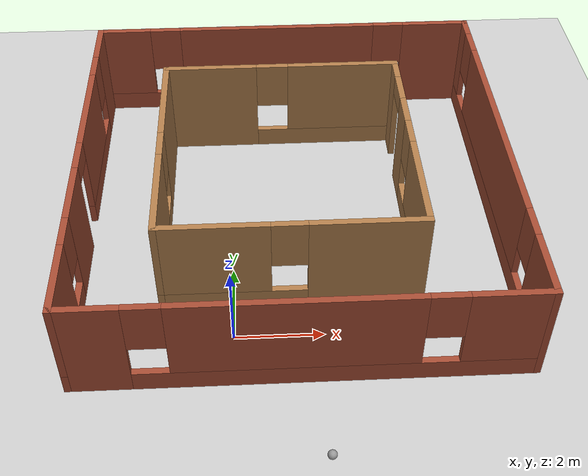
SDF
<sdf version="1.6">
 <world name="default">
  <model name="ground_plane">
   <static>1</static>
   <link name="link">
    <collision name="collision">
     <geometry><plane><normal>0 0 1</normal><size>100 100</size></plane></geometry>
     <surface>
      <contact><collide_bitmask>65535</collide_bitmask></contact>
      <friction><ode><mu>100</mu><mu2>50</mu2></ode></friction>
     </surface>
    </collision>
    <visual name="visual">
     <cast_shadows>0</cast_shadows>
     <geometry><plane><normal>0 0 1</normal><size>100 100</size></plane></geometry>
     <material>
      <script><uri>file://media/materials/scripts/gazebo.material</uri><name>Gazebo/Grey</name></script>
     </material>
    </visual>
   </link>
  </model>
  <model name="robot">
   <link name="link_0">
    <inertial>
     <mass>1</mass>
     <inertia>
      <ixx>0.166667</ixx>
      <ixy>0</ixy>
      <ixz>0</ixz>
      <iyy>0.166667</iyy>
      <iyz>0</iyz>
      <izz>0.166667</izz>
     </inertia>
    </inertial>
    <visual name="visual">
     <geometry><box><size>1 1 0.1</size></box></geometry>
     <material>
      <lighting>1</lighting>
      <script><uri>file://media/materials/scripts/gazebo.material</uri><name>Gazebo/Grey</name></script>
      <shader type="pixel"><normal_map>__default__</normal_map></shader>
      <ambient>0.3 0.3 0.3 1</ambient>
      <diffuse>0.7 0.7 0.7 1</diffuse>
      <specular>0.01 0.01 0.01 1</specular>
      <emissive>0 0 0 1</emissive>
     </material>
    </visual>
    <collision name="collision">
     <geometry><box><size>1 1 0.1</size></box></geometry>
     <surface>
      <friction>
       <ode><mu>1</mu><mu2>1</mu2><fdir1>0 0 0</fdir1><slip1>0</slip1><slip2>0</slip2></ode>
       <torsional>
        <coefficient>1</coefficient>
        <patch_radius>0</patch_radius>
        <surface_radius>0</surface_radius>
        <use_patch_radius>1</use_patch_radius>
        <ode><slip>0</slip></ode>
       </torsional>
      </friction>
      <bounce><restitution_coefficient>0</restitution_coefficient><threshold>1e+06</threshold></bounce>
      <contact>
       <collide_without_contact>0</collide_without_contact>
       <collide_without_contact_bitmask>1</collide_without_contact_bitmask>
       <collide_bitmask>1</collide_bitmask>
       <ode>
        <soft_cfm>0</soft_cfm>
        <soft_erp>0.2</soft_erp>
        <kp>1e+13</kp>
        <kd>1</kd>
        <max_vel>0.01</max_vel>
        <min_depth>0</min_depth>
       </ode>
       <bullet>
        <split_impulse>1</split_impulse>
        <split_impulse_penetration_threshold>-0.01</split_impulse_penetration_threshold>
        <soft_cfm>0</soft_cfm>
        <soft_erp>0.2</soft_erp>
        <kp>1e+13</kp>
        <kd>1</kd>
       </bullet>
      </contact>
     </surface>
    </collision>
   </link>
   <link name="link_1">
    <pose>0.3 -0.550019 0 1.5707 -0 0</pose>
    <inertial>
     <mass>1</mass>
     <inertia><ixx>0.145833</ixx><ixy>0</ixy><ixz>0</ixz><iyy>0.145833</iyy><iyz>0</iyz><izz>0.125</izz></inertia>
    </inertial>
    <visual name="visual">
     <geometry><cylinder><radius>0.2</radius><length>0.1</length></cylinder></geometry>
     <material>
      <lighting>1</lighting>
      <script><uri>file://media/materials/scripts/gazebo.material</uri><name>Gazebo/Grey</name></script>
      <shader type="pixel"><normal_map>__default__</normal_map></shader>
      <ambient>0.3 0.3 0.3 1</ambient>
      <diffuse>0.7 0.7 0.7 1</diffuse>
      <specular>0.01 0.01 0.01 1</specular>
      <emissive>0 0 0 1</emissive>
     </material>
    </visual>
    <collision name="collision">
     <geometry><cylinder><radius>0.2</radius><length>0.1</length></cylinder></geometry>
     <surface>
      <friction>
       <ode><mu>1</mu><mu2>1</mu2><fdir1>0 0 0</fdir1><slip1>0</slip1><slip2>0</slip2></ode>
       <torsional>
        <coefficient>1</coefficient>
        <patch_radius>0</patch_radius>
        <surface_radius>0</surface_radius>
        <use_patch_radius>1</use_patch_radius>
        <ode><slip>0</slip></ode>
       </torsional>
      </friction>
      <bounce><restitution_coefficient>0</restitution_coefficient><threshold>1e+06</threshold></bounce>
      <contact>
       <collide_without_contact>0</collide_without_contact>
       <collide_without_contact_bitmask>1</collide_without_contact_bitmask>
       <collide_bitmask>1</collide_bitmask>
       <ode>
        <soft_cfm>0</soft_cfm>
        <soft_erp>0.2</soft_erp>
        <kp>1e+13</kp>
        <kd>1</kd>
        <max_vel>0.01</max_vel>
        <min_depth>0</min_depth>
       </ode>
       <bullet>
        <split_impulse>1</split_impulse>
        <split_impulse_penetration_threshold>-0.01</split_impulse_penetration_threshold>
        <soft_cfm>0</soft_cfm>
        <soft_erp>0.2</soft_erp>
        <kp>1e+13</kp>
        <kd>1</kd>
       </bullet>
      </contact>
     </surface>
    </collision>
   </link>
   <link name="link_1_clone">
    <pose>0.3 0.550019 0 1.5707 -0 0</pose>
    <inertial>
     <mass>1</mass>
     <inertia><ixx>0.145833</ixx><ixy>0</ixy><ixz>0</ixz><iyy>0.145833</iyy><iyz>0</iyz><izz>0.125</izz></inertia>
    </inertial>
    <visual name="visual">
     <geometry><cylinder><radius>0.2</radius><length>0.1</length></cylinder></geometry>
     <material>
      <lighting>1</lighting>
      <script><uri>file://media/materials/scripts/gazebo.material</uri><name>Gazebo/Grey</name></script>
      <shader type="pixel"><normal_map>__default__</normal_map></shader>
      <ambient>0.3 0.3 0.3 1</ambient>
      <diffuse>0.7 0.7 0.7 1</diffuse>
      <specular>0.01 0.01 0.01 1</specular>
      <emissive>0 0 0 1</emissive>
     </material>
    </visual>
    <collision name="collision">
     <geometry><cylinder><radius>0.2</radius><length>0.1</length></cylinder></geometry>
     <surface>
      <friction>
       <ode><mu>1</mu><mu2>1</mu2><fdir1>0 0 0</fdir1><slip1>0</slip1><slip2>0</slip2></ode>
       <torsional>
        <coefficient>1</coefficient>
        <patch_radius>0</patch_radius>
        <surface_radius>0</surface_radius>
        <use_patch_radius>1</use_patch_radius>
        <ode><slip>0</slip></ode>
       </torsional>
      </friction>
      <bounce><restitution_coefficient>0</restitution_coefficient><threshold>1e+06</threshold></bounce>
      <contact>
       <collide_without_contact>0</collide_without_contact>
       <collide_without_contact_bitmask>1</collide_without_contact_bitmask>
       <collide_bitmask>1</collide_bitmask>
       <ode>
        <soft_cfm>0</soft_cfm>
        <soft_erp>0.2</soft_erp>
        <kp>1e+13</kp>
        <kd>1</kd>
        <max_vel>0.01</max_vel>
        <min_depth>0</min_depth>
       </ode>
       <bullet>
        <split_impulse>1</split_impulse>
        <split_impulse_penetration_threshold>-0.01</split_impulse_penetration_threshold>
        <soft_cfm>0</soft_cfm>
        <soft_erp>0.2</soft_erp>
        <kp>1e+13</kp>
        <kd>1</kd>
       </bullet>
      </contact>
     </surface>
    </collision>
   </link>
   <link name="link_1_clone_0">
    <pose>-0.3 0.550019 0 1.5707 -0 0</pose>
    <inertial>
     <mass>1</mass>
     <inertia><ixx>0.145833</ixx><ixy>0</ixy><ixz>0</ixz><iyy>0.145833</iyy><iyz>0</iyz><izz>0.125</izz></inertia>
    </inertial>
    <visual name="visual">
     <geometry><cylinder><radius>0.2</radius><length>0.1</length></cylinder></geometry>
     <material>
      <lighting>1</lighting>
      <script><uri>file://media/materials/scripts/gazebo.material</uri><name>Gazebo/Grey</name></script>
      <shader type="pixel"><normal_map>__default__</normal_map></shader>
      <ambient>0.3 0.3 0.3 1</ambient>
      <diffuse>0.7 0.7 0.7 1</diffuse>
      <specular>0.01 0.01 0.01 1</specular>
      <emissive>0 0 0 1</emissive>
     </material>
    </visual>
    <collision name="collision">
     <geometry><cylinder><radius>0.2</radius><length>0.1</length></cylinder></geometry>
     <surface>
      <friction>
       <ode><mu>1</mu><mu2>1</mu2><fdir1>0 0 0</fdir1><slip1>0</slip1><slip2>0</slip2></ode>
       <torsional>
        <coefficient>1</coefficient>
        <patch_radius>0</patch_radius>
        <surface_radius>0</surface_radius>
        <use_patch_radius>1</use_patch_radius>
        <ode><slip>0</slip></ode>
       </torsional>
      </friction>
      <bounce><restitution_coefficient>0</restitution_coefficient><threshold>1e+06</threshold></bounce>
      <contact>
       <collide_without_contact>0</collide_without_contact>
       <collide_without_contact_bitmask>1</collide_without_contact_bitmask>
       <collide_bitmask>1</collide_bitmask>
       <ode>
        <soft_cfm>0</soft_cfm>
        <soft_erp>0.2</soft_erp>
        <kp>1e+13</kp>
        <kd>1</kd>
        <max_vel>0.01</max_vel>
        <min_depth>0</min_depth>
       </ode>
       <bullet>
        <split_impulse>1</split_impulse>
        <split_impulse_penetration_threshold>-0.01</split_impulse_penetration_threshold>
        <soft_cfm>0</soft_cfm>
        <soft_erp>0.2</soft_erp>
        <kp>1e+13</kp>
        <kd>1</kd>
       </bullet>
      </contact>
     </surface>
    </collision>
   </link>
   <link name="link_1_clone_1">
    <pose>-0.3 -0.550019 0 1.5707 -0 0</pose>
    <inertial>
     <mass>1</mass>
     <inertia><ixx>0.145833</ixx><ixy>0</ixy><ixz>0</ixz><iyy>0.145833</iyy><iyz>0</iyz><izz>0.125</izz></inertia>
    </inertial>
    <visual name="visual">
     <geometry><cylinder><radius>0.2</radius><length>0.1</length></cylinder></geometry>
     <material>
      <lighting>1</lighting>
      <script><uri>file://media/materials/scripts/gazebo.material</uri><name>Gazebo/Grey</name></script>
      <shader type="pixel"><normal_map>__default__</normal_map></shader>
      <ambient>0.3 0.3 0.3 1</ambient>
      <diffuse>0.7 0.7 0.7 1</diffuse>
      <specular>0.01 0.01 0.01 1</specular>
      <emissive>0 0 0 1</emissive>
     </material>
    </visual>
    <collision name="collision">
     <geometry><cylinder><radius>0.2</radius><length>0.1</length></cylinder></geometry>
     <surface>
      <friction>
       <ode><mu>1</mu><mu2>1</mu2><fdir1>0 0 0</fdir1><slip1>0</slip1><slip2>0</slip2></ode>
       <torsional>
        <coefficient>1</coefficient>
        <patch_radius>0</patch_radius>
        <surface_radius>0</surface_radius>
        <use_patch_radius>1</use_patch_radius>
        <ode><slip>0</slip></ode>
       </torsional>
      </friction>
      <bounce><restitution_coefficient>0</restitution_coefficient><threshold>1e+06</threshold></bounce>
      <contact>
       <collide_without_contact>0</collide_without_contact>
       <collide_without_contact_bitmask>1</collide_without_contact_bitmask>
       <collide_bitmask>1</collide_bitmask>
       <ode>
        <soft_cfm>0</soft_cfm>
        <soft_erp>0.2</soft_erp>
        <kp>1e+13</kp>
        <kd>1</kd>
        <max_vel>0.01</max_vel>
        <min_depth>0</min_depth>
       </ode>
       <bullet>
        <split_impulse>1</split_impulse>
        <split_impulse_penetration_threshold>-0.01</split_impulse_penetration_threshold>
        <soft_cfm>0</soft_cfm>
        <soft_erp>0.2</soft_erp>
        <kp>1e+13</kp>
        <kd>1</kd>
       </bullet>
      </contact>
     </surface>
    </collision>
   </link>
   <joint name="link_0_JOINT_0" type="revolute">
    <parent>link_0</parent>
    <child>link_1_clone</child>
    <axis>
     <xyz>0 0 1</xyz>
     <use_parent_model_frame>0</use_parent_model_frame>
     <limit>
      <lower>-1.79769e+308</lower>
      <upper>1.79769e+308</upper>
      <effort>-1</effort>
      <velocity>-1</velocity>
     </limit>
     <dynamics>
      <spring_reference>0</spring_reference>
      <spring_stiffness>0</spring_stiffness>
      <damping>0</damping>
     </dynamics>
    </axis>
    <physics>
     <ode><limit><cfm>0</cfm><erp>0.2</erp></limit><suspension><cfm>0</cfm><erp>0.2</erp></suspension></ode>
    </physics>
   </joint>
   <joint name="link_0_JOINT_1" type="revolute">
    <parent>link_0</parent>
    <child>link_1_clone_0</child>
    <axis>
     <xyz>0 0 1</xyz>
     <use_parent_model_frame>0</use_parent_model_frame>
     <limit>
      <lower>-1.79769e+308</lower>
      <upper>1.79769e+308</upper>
      <effort>-1</effort>
      <velocity>-1</velocity>
     </limit>
     <dynamics>
      <spring_reference>0</spring_reference>
      <spring_stiffness>0</spring_stiffness>
      <damping>0</damping>
     </dynamics>
    </axis>
    <physics>
     <ode><limit><cfm>0</cfm><erp>0.2</erp></limit><suspension><cfm>0</cfm><erp>0.2</erp></suspension></ode>
    </physics>
   </joint>
   <joint name="link_0_JOINT_2" type="revolute">
    <parent>link_0</parent>
    <child>link_1_clone_1</child>
    <axis>
     <xyz>0 0 1</xyz>
     <use_parent_model_frame>0</use_parent_model_frame>
     <limit>
      <lower>-1.79769e+308</lower>
      <upper>1.79769e+308</upper>
      <effort>-1</effort>
      <velocity>-1</velocity>
     </limit>
     <dynamics>
      <spring_reference>0</spring_reference>
      <spring_stiffness>0</spring_stiffness>
      <damping>0</damping>
     </dynamics>
    </axis>
    <physics>
     <ode><limit><cfm>0</cfm><erp>0.2</erp></limit><suspension><cfm>0</cfm><erp>0.2</erp></suspension></ode>
    </physics>
   </joint>
   <joint name="link_0_JOINT_3" type="revolute">
    <parent>link_0</parent>
    <child>link_1</child>
    <axis>
     <xyz>0 0 1</xyz>
     <use_parent_model_frame>0</use_parent_model_frame>
     <limit>
      <lower>-1.79769e+308</lower>
      <upper>1.79769e+308</upper>
      <effort>-1</effort>
      <velocity>-1</velocity>
     </limit>
     <dynamics>
      <spring_reference>0</spring_reference>
      <spring_stiffness>0</spring_stiffness>
      <damping>0</damping>
     </dynamics>
    </axis>
    <physics>
     <ode><limit><cfm>0</cfm><erp>0.2</erp></limit><suspension><cfm>0</cfm><erp>0.2</erp></suspension></ode>
    </physics>
   </joint>
   <static>0</static>
   <pose>-0.105313 1.94645 0.200005 0 0 -0.022283</pose>
  </model>
  <model name="mybuilding_0">
   <pose>1.475 3.735 0 0 -0 0</pose>
   <link name="Wall_0">
    <pose>0 -4.925 0 0 -0 0</pose>
    <visual name="Wall_0_Visual_0">
     <pose>-4.28337 0 1.25 0 -0 0</pose>
     <geometry><box><size>1.43326 0.15 2.5</size></box></geometry>
     <material>
      <script><uri>file://media/materials/scripts/gazebo.material</uri><name>Gazebo/Bricks</name></script>
      <ambient>1 1 1 1</ambient>
     </material>
     <meta><layer>0</layer></meta>
    </visual>
    <collision name="Wall_0_Collision_0">
     <geometry><box><size>1.43326 0.15 2.5</size></box></geometry>
     <pose>-4.28337 0 1.25 0 -0 0</pose>
    </collision>
    <visual name="Wall_0_Visual_1">
     <pose>0.716628 0 0.25 0 -0 0</pose>
     <geometry><box><size>8.56674 0.15 0.5</size></box></geometry>
     <material>
      <script><uri>file://media/materials/scripts/gazebo.material</uri><name>Gazebo/Bricks</name></script>
      <ambient>1 1 1 1</ambient>
     </material>
     <meta><layer>0</layer></meta>
    </visual>
    <collision name="Wall_0_Collision_1">
     <geometry><box><size>8.56674 0.15 0.5</size></box></geometry>
     <pose>0.716628 0 0.25 0 -0 0</pose>
    </collision>
    <visual name="Wall_0_Visual_2">
     <pose>-0.168901 0 1.5 0 -0 0</pose>
     <geometry><box><size>5.19569 0.15 2</size></box></geometry>
     <material>
      <script><uri>file://media/materials/scripts/gazebo.material</uri><name>Gazebo/Bricks</name></script>
      <ambient>1 1 1 1</ambient>
     </material>
     <meta><layer>0</layer></meta>
    </visual>
    <collision name="Wall_0_Collision_2">
     <geometry><box><size>5.19569 0.15 2</size></box></geometry>
     <pose>-0.168901 0 1.5 0 -0 0</pose>
    </collision>
    <visual name="Wall_0_Visual_3">
     <pose>4.11447 0 1.5 0 -0 0</pose>
     <geometry><box><size>1.77106 0.15 2</size></box></geometry>
     <material>
      <script><uri>file://media/materials/scripts/gazebo.material</uri><name>Gazebo/Bricks</name></script>
      <ambient>1 1 1 1</ambient>
     </material>
     <meta><layer>0</layer></meta>
    </visual>
    <collision name="Wall_0_Collision_3">
     <geometry><box><size>1.77106 0.15 2</size></box></geometry>
     <pose>4.11447 0 1.5 0 -0 0</pose>
    </collision>
    <visual name="Wall_0_Visual_4">
     <pose>-3.16674 0 1.9 0 -0 0</pose>
     <geometry><box><size>0.8 0.15 1.2</size></box></geometry>
     <material>
      <script><uri>file://media/materials/scripts/gazebo.material</uri><name>Gazebo/Bricks</name></script>
      <ambient>1 1 1 1</ambient>
     </material>
     <meta><layer>0</layer></meta>
    </visual>
    <collision name="Wall_0_Collision_4">
     <geometry><box><size>0.8 0.15 1.2</size></box></geometry>
     <pose>-3.16674 0 1.9 0 -0 0</pose>
    </collision>
    <visual name="Wall_0_Visual_5">
     <pose>2.82894 0 1.9 0 -0 0</pose>
     <geometry><box><size>0.8 0.15 1.2</size></box></geometry>
     <material>
      <script><uri>file://media/materials/scripts/gazebo.material</uri><name>Gazebo/Bricks</name></script>
      <ambient>1 1 1 1</ambient>
     </material>
     <meta><layer>0</layer></meta>
    </visual>
    <collision name="Wall_0_Collision_5">
     <geometry><box><size>0.8 0.15 1.2</size></box></geometry>
     <pose>2.82894 0 1.9 0 -0 0</pose>
    </collision>
   </link>
   <link name="Wall_1">
    <pose>4.925 0 0 0 -0 1.5708</pose>
    <visual name="Wall_1_Visual_0">
     <pose>-4.1761 0 1.25 0 -0 0</pose>
     <geometry><box><size>1.64781 0.15 2.5</size></box></geometry>
     <material>
      <script><uri>file://media/materials/scripts/gazebo.material</uri><name>Gazebo/Bricks</name></script>
      <ambient>1 1 1 1</ambient>
     </material>
     <meta><layer>0</layer></meta>
    </visual>
    <collision name="Wall_1_Collision_0">
     <geometry><box><size>1.64781 0.15 2.5</size></box></geometry>
     <pose>-4.1761 0 1.25 0 -0 0</pose>
    </collision>
    <visual name="Wall_1_Visual_1">
     <pose>0.823903 0 0.25 0 -0 0</pose>
     <geometry><box><size>8.35219 0.15 0.5</size></box></geometry>
     <material>
      <script><uri>file://media/materials/scripts/gazebo.material</uri><name>Gazebo/Bricks</name></script>
      <ambient>1 1 1 1</ambient>
     </material>
     <meta><layer>0</layer></meta>
    </visual>
    <collision name="Wall_1_Collision_1">
     <geometry><box><size>8.35219 0.15 0.5</size></box></geometry>
     <pose>0.823903 0 0.25 0 -0 0</pose>
    </collision>
    <visual name="Wall_1_Visual_2">
     <pose>0.489208 0 1.5 0 -0 0</pose>
     <geometry><box><size>6.0828 0.15 2</size></box></geometry>
     <material>
      <script><uri>file://media/materials/scripts/gazebo.material</uri><name>Gazebo/Bricks</name></script>
      <ambient>1 1 1 1</ambient>
     </material>
     <meta><layer>0</layer></meta>
    </visual>
    <collision name="Wall_1_Collision_2">
     <geometry><box><size>6.0828 0.15 2</size></box></geometry>
     <pose>0.489208 0 1.5 0 -0 0</pose>
    </collision>
    <visual name="Wall_1_Visual_3">
     <pose>4.6653 0 1.5 0 -0 0</pose>
     <geometry><box><size>0.669391 0.15 2</size></box></geometry>
     <material>
      <script><uri>file://media/materials/scripts/gazebo.material</uri><name>Gazebo/Bricks</name></script>
      <ambient>1 1 1 1</ambient>
     </material>
     <meta><layer>0</layer></meta>
    </visual>
    <collision name="Wall_1_Collision_3">
     <geometry><box><size>0.669391 0.15 2</size></box></geometry>
     <pose>4.6653 0 1.5 0 -0 0</pose>
    </collision>
    <visual name="Wall_1_Visual_4">
     <pose>-2.95219 0 1.9 0 -0 0</pose>
     <geometry><box><size>0.8 0.15 1.2</size></box></geometry>
     <material>
      <script><uri>file://media/materials/scripts/gazebo.material</uri><name>Gazebo/Bricks</name></script>
      <ambient>1 1 1 1</ambient>
     </material>
     <meta><layer>0</layer></meta>
    </visual>
    <collision name="Wall_1_Collision_4">
     <geometry><box><size>0.8 0.15 1.2</size></box></geometry>
     <pose>-2.95219 0 1.9 0 -0 0</pose>
    </collision>
    <visual name="Wall_1_Visual_5">
     <pose>3.93061 0 1.9 0 -0 0</pose>
     <geometry><box><size>0.8 0.15 1.2</size></box></geometry>
     <material>
      <script><uri>file://media/materials/scripts/gazebo.material</uri><name>Gazebo/Bricks</name></script>
      <ambient>1 1 1 1</ambient>
     </material>
     <meta><layer>0</layer></meta>
    </visual>
    <collision name="Wall_1_Collision_5">
     <geometry><box><size>0.8 0.15 1.2</size></box></geometry>
     <pose>3.93061 0 1.9 0 -0 0</pose>
    </collision>
   </link>
   <link name="Wall_21">
    <pose>-3.075 0.15 0 0 0 -1.5708</pose>
    <visual name="Wall_21_Visual_0">
     <pose>-1.64783 0 1.25 0 -0 0</pose>
     <geometry><box><size>2.70435 0.15 2.5</size></box></geometry>
     <material>
      <script><uri>file://media/materials/scripts/gazebo.material</uri><name>Gazebo/Wood</name></script>
      <ambient>1 1 1 1</ambient>
     </material>
     <meta><layer>0</layer></meta>
    </visual>
    <collision name="Wall_21_Collision_0">
     <geometry><box><size>2.70435 0.15 2.5</size></box></geometry>
     <pose>-1.64783 0 1.25 0 -0 0</pose>
    </collision>
    <visual name="Wall_21_Visual_1">
     <pose>1.35217 0 0.25 0 -0 0</pose>
     <geometry><box><size>3.29565 0.15 0.5</size></box></geometry>
     <material>
      <script><uri>file://media/materials/scripts/gazebo.material</uri><name>Gazebo/Wood</name></script>
      <ambient>1 1 1 1</ambient>
     </material>
     <meta><layer>0</layer></meta>
    </visual>
    <collision name="Wall_21_Collision_1">
     <geometry><box><size>3.29565 0.15 0.5</size></box></geometry>
     <pose>1.35217 0 0.25 0 -0 0</pose>
    </collision>
    <visual name="Wall_21_Visual_2">
     <pose>1.75218 0 1.5 0 -0 0</pose>
     <geometry><box><size>2.49565 0.15 2</size></box></geometry>
     <material>
      <script><uri>file://media/materials/scripts/gazebo.material</uri><name>Gazebo/Wood</name></script>
      <ambient>1 1 1 1</ambient>
     </material>
     <meta><layer>0</layer></meta>
    </visual>
    <collision name="Wall_21_Collision_2">
     <geometry><box><size>2.49565 0.15 2</size></box></geometry>
     <pose>1.75218 0 1.5 0 -0 0</pose>
    </collision>
    <visual name="Wall_21_Visual_3">
     <pose>0.104351 0 1.9 0 -0 0</pose>
     <geometry><box><size>0.8 0.15 1.2</size></box></geometry>
     <material>
      <script><uri>file://media/materials/scripts/gazebo.material</uri><name>Gazebo/Wood</name></script>
      <ambient>1 1 1 1</ambient>
     </material>
     <meta><layer>0</layer></meta>
    </visual>
    <collision name="Wall_21_Collision_3">
     <geometry><box><size>0.8 0.15 1.2</size></box></geometry>
     <pose>0.104351 0 1.9 0 -0 0</pose>
    </collision>
   </link>
   <link name="Wall_23">
    <pose>-0.15 3.075 0 0 -0 0</pose>
    <visual name="Wall_23_Visual_0">
     <pose>-1.81652 0 1.25 0 -0 0</pose>
     <geometry><box><size>2.36697 0.15 2.5</size></box></geometry>
     <material>
      <script><uri>file://media/materials/scripts/gazebo.material</uri><name>Gazebo/Wood</name></script>
      <ambient>1 1 1 1</ambient>
     </material>
     <meta><layer>0</layer></meta>
    </visual>
    <collision name="Wall_23_Collision_0">
     <geometry><box><size>2.36697 0.15 2.5</size></box></geometry>
     <pose>-1.81652 0 1.25 0 -0 0</pose>
    </collision>
    <visual name="Wall_23_Visual_1">
     <pose>1.18348 0 0.25 0 -0 0</pose>
     <geometry><box><size>3.63303 0.15 0.5</size></box></geometry>
     <material>
      <script><uri>file://media/materials/scripts/gazebo.material</uri><name>Gazebo/Wood</name></script>
      <ambient>1 1 1 1</ambient>
     </material>
     <meta><layer>0</layer></meta>
    </visual>
    <collision name="Wall_23_Collision_1">
     <geometry><box><size>3.63303 0.15 0.5</size></box></geometry>
     <pose>1.18348 0 0.25 0 -0 0</pose>
    </collision>
    <visual name="Wall_23_Visual_2">
     <pose>1.58348 0 1.5 0 -0 0</pose>
     <geometry><box><size>2.83303 0.15 2</size></box></geometry>
     <material>
      <script><uri>file://media/materials/scripts/gazebo.material</uri><name>Gazebo/Wood</name></script>
      <ambient>1 1 1 1</ambient>
     </material>
     <meta><layer>0</layer></meta>
    </visual>
    <collision name="Wall_23_Collision_2">
     <geometry><box><size>2.83303 0.15 2</size></box></geometry>
     <pose>1.58348 0 1.5 0 -0 0</pose>
    </collision>
    <visual name="Wall_23_Visual_3">
     <pose>-0.233033 0 1.9 0 -0 0</pose>
     <geometry><box><size>0.8 0.15 1.2</size></box></geometry>
     <material>
      <script><uri>file://media/materials/scripts/gazebo.material</uri><name>Gazebo/Wood</name></script>
      <ambient>1 1 1 1</ambient>
     </material>
     <meta><layer>0</layer></meta>
    </visual>
    <collision name="Wall_23_Collision_3">
     <geometry><box><size>0.8 0.15 1.2</size></box></geometry>
     <pose>-0.233033 0 1.9 0 -0 0</pose>
    </collision>
   </link>
   <link name="Wall_24">
    <pose>2.775 0.15 0 0 0 -1.5708</pose>
    <visual name="Wall_24_Visual_0">
     <pose>-2.63642 0 1.25 0 -0 0</pose>
     <geometry><box><size>0.727166 0.15 2.5</size></box></geometry>
     <material>
      <script><uri>file://media/materials/scripts/gazebo.material</uri><name>Gazebo/Wood</name></script>
      <ambient>1 1 1 1</ambient>
     </material>
     <meta><layer>0</layer></meta>
    </visual>
    <collision name="Wall_24_Collision_0">
     <geometry><box><size>0.727166 0.15 2.5</size></box></geometry>
     <pose>-2.63642 0 1.25 0 -0 0</pose>
    </collision>
    <visual name="Wall_24_Visual_1">
     <pose>-0.926012 0 1.25 0 -0 0</pose>
     <geometry><box><size>0.893643 0.15 2.5</size></box></geometry>
     <material>
      <script><uri>file://media/materials/scripts/gazebo.material</uri><name>Gazebo/Wood</name></script>
      <ambient>1 1 1 1</ambient>
     </material>
     <meta><layer>0</layer></meta>
    </visual>
    <collision name="Wall_24_Collision_1">
     <geometry><box><size>0.893643 0.15 2.5</size></box></geometry>
     <pose>-0.926012 0 1.25 0 -0 0</pose>
    </collision>
    <visual name="Wall_24_Visual_2">
     <pose>1.2604 0 0.25 0 -0 0</pose>
     <geometry><box><size>3.47919 0.15 0.5</size></box></geometry>
     <material>
      <script><uri>file://media/materials/scripts/gazebo.material</uri><name>Gazebo/Wood</name></script>
      <ambient>1 1 1 1</ambient>
     </material>
     <meta><layer>0</layer></meta>
    </visual>
    <collision name="Wall_24_Collision_2">
     <geometry><box><size>3.47919 0.15 0.5</size></box></geometry>
     <pose>1.2604 0 0.25 0 -0 0</pose>
    </collision>
    <visual name="Wall_24_Visual_3">
     <pose>1.6604 0 1.5 0 -0 0</pose>
     <geometry><box><size>2.67919 0.15 2</size></box></geometry>
     <material>
      <script><uri>file://media/materials/scripts/gazebo.material</uri><name>Gazebo/Wood</name></script>
      <ambient>1 1 1 1</ambient>
     </material>
     <meta><layer>0</layer></meta>
    </visual>
    <collision name="Wall_24_Collision_3">
     <geometry><box><size>2.67919 0.15 2</size></box></geometry>
     <pose>1.6604 0 1.5 0 -0 0</pose>
    </collision>
    <visual name="Wall_24_Visual_4">
     <pose>-0.079191 0 1.9 0 -0 0</pose>
     <geometry><box><size>0.8 0.15 1.2</size></box></geometry>
     <material>
      <script><uri>file://media/materials/scripts/gazebo.material</uri><name>Gazebo/Wood</name></script>
      <ambient>1 1 1 1</ambient>
     </material>
     <meta><layer>0</layer></meta>
    </visual>
    <collision name="Wall_24_Collision_4">
     <geometry><box><size>0.8 0.15 1.2</size></box></geometry>
     <pose>-0.079191 0 1.9 0 -0 0</pose>
    </collision>
    <visual name="Wall_24_Visual_5">
     <pose>-1.82283 0 2.25 0 -0 0</pose>
     <geometry><box><size>0.9 0.15 0.5</size></box></geometry>
     <material>
      <script><uri>file://media/materials/scripts/gazebo.material</uri><name>Gazebo/Wood</name></script>
      <ambient>1 1 1 1</ambient>
     </material>
     <meta><layer>0</layer></meta>
    </visual>
    <collision name="Wall_24_Collision_5">
     <geometry><box><size>0.9 0.15 0.5</size></box></geometry>
     <pose>-1.82283 0 2.25 0 -0 0</pose>
    </collision>
   </link>
   <link name="Wall_25">
    <pose>-0.15 -2.775 0 0 -0 3.14159</pose>
    <visual name="Wall_25_Visual_0">
     <pose>-1.67525 0 1.25 0 -0 0</pose>
     <geometry><box><size>2.64949 0.15 2.5</size></box></geometry>
     <material>
      <script><uri>file://media/materials/scripts/gazebo.material</uri><name>Gazebo/Wood</name></script>
      <ambient>1 1 1 1</ambient>
     </material>
     <meta><layer>0</layer></meta>
    </visual>
    <collision name="Wall_25_Collision_0">
     <geometry><box><size>2.64949 0.15 2.5</size></box></geometry>
     <pose>-1.67525 0 1.25 0 -0 0</pose>
    </collision>
    <visual name="Wall_25_Visual_1">
     <pose>1.32475 0 0.25 0 -0 0</pose>
     <geometry><box><size>3.35051 0.15 0.5</size></box></geometry>
     <material>
      <script><uri>file://media/materials/scripts/gazebo.material</uri><name>Gazebo/Wood</name></script>
      <ambient>1 1 1 1</ambient>
     </material>
     <meta><layer>0</layer></meta>
    </visual>
    <collision name="Wall_25_Collision_1">
     <geometry><box><size>3.35051 0.15 0.5</size></box></geometry>
     <pose>1.32475 0 0.25 0 -0 0</pose>
    </collision>
    <visual name="Wall_25_Visual_2">
     <pose>1.72475 0 1.5 0 -0 0</pose>
     <geometry><box><size>2.55051 0.15 2</size></box></geometry>
     <material>
      <script><uri>file://media/materials/scripts/gazebo.material</uri><name>Gazebo/Wood</name></script>
      <ambient>1 1 1 1</ambient>
     </material>
     <meta><layer>0</layer></meta>
    </visual>
    <collision name="Wall_25_Collision_2">
     <geometry><box><size>2.55051 0.15 2</size></box></geometry>
     <pose>1.72475 0 1.5 0 -0 0</pose>
    </collision>
    <visual name="Wall_25_Visual_3">
     <pose>0.049492 0 1.9 0 -0 0</pose>
     <geometry><box><size>0.8 0.15 1.2</size></box></geometry>
     <material>
      <script><uri>file://media/materials/scripts/gazebo.material</uri><name>Gazebo/Wood</name></script>
      <ambient>1 1 1 1</ambient>
     </material>
     <meta><layer>0</layer></meta>
    </visual>
    <collision name="Wall_25_Collision_3">
     <geometry><box><size>0.8 0.15 1.2</size></box></geometry>
     <pose>0.049492 0 1.9 0 -0 0</pose>
    </collision>
   </link>
   <link name="Wall_4">
    <pose>0 4.925 0 0 -0 3.14159</pose>
    <visual name="Wall_4_Visual_0">
     <pose>-4.11447 0 1.25 0 -0 0</pose>
     <geometry><box><size>1.77106 0.15 2.5</size></box></geometry>
     <material>
      <script><uri>file://media/materials/scripts/gazebo.material</uri><name>Gazebo/Bricks</name></script>
      <ambient>1 1 1 1</ambient>
     </material>
     <meta><layer>0</layer></meta>
    </visual>
    <collision name="Wall_4_Collision_0">
     <geometry><box><size>1.77106 0.15 2.5</size></box></geometry>
     <pose>-4.11447 0 1.25 0 -0 0</pose>
    </collision>
    <visual name="Wall_4_Visual_1">
     <pose>0.885529 0 0.25 0 -0 0</pose>
     <geometry><box><size>8.22894 0.15 0.5</size></box></geometry>
     <material>
      <script><uri>file://media/materials/scripts/gazebo.material</uri><name>Gazebo/Bricks</name></script>
      <ambient>1 1 1 1</ambient>
     </material>
     <meta><layer>0</layer></meta>
    </visual>
    <collision name="Wall_4_Collision_1">
     <geometry><box><size>8.22894 0.15 0.5</size></box></geometry>
     <pose>0.885529 0 0.25 0 -0 0</pose>
    </collision>
    <visual name="Wall_4_Visual_2">
     <pose>0.184196 0 1.5 0 -0 0</pose>
     <geometry><box><size>5.22628 0.15 2</size></box></geometry>
     <material>
      <script><uri>file://media/materials/scripts/gazebo.material</uri><name>Gazebo/Bricks</name></script>
      <ambient>1 1 1 1</ambient>
     </material>
     <meta><layer>0</layer></meta>
    </visual>
    <collision name="Wall_4_Collision_2">
     <geometry><box><size>5.22628 0.15 2</size></box></geometry>
     <pose>0.184196 0 1.5 0 -0 0</pose>
    </collision>
    <visual name="Wall_4_Visual_3">
     <pose>4.29867 0 1.5 0 -0 0</pose>
     <geometry><box><size>1.40267 0.15 2</size></box></geometry>
     <material>
      <script><uri>file://media/materials/scripts/gazebo.material</uri><name>Gazebo/Bricks</name></script>
      <ambient>1 1 1 1</ambient>
     </material>
     <meta><layer>0</layer></meta>
    </visual>
    <collision name="Wall_4_Collision_3">
     <geometry><box><size>1.40267 0.15 2</size></box></geometry>
     <pose>4.29867 0 1.5 0 -0 0</pose>
    </collision>
    <visual name="Wall_4_Visual_4">
     <pose>-2.82894 0 1.9 0 -0 0</pose>
     <geometry><box><size>0.8 0.15 1.2</size></box></geometry>
     <material>
      <script><uri>file://media/materials/scripts/gazebo.material</uri><name>Gazebo/Bricks</name></script>
      <ambient>1 1 1 1</ambient>
     </material>
     <meta><layer>0</layer></meta>
    </visual>
    <collision name="Wall_4_Collision_4">
     <geometry><box><size>0.8 0.15 1.2</size></box></geometry>
     <pose>-2.82894 0 1.9 0 -0 0</pose>
    </collision>
    <visual name="Wall_4_Visual_5">
     <pose>3.19733 0 1.9 0 -0 0</pose>
     <geometry><box><size>0.8 0.15 1.2</size></box></geometry>
     <material>
      <script><uri>file://media/materials/scripts/gazebo.material</uri><name>Gazebo/Bricks</name></script>
      <ambient>1 1 1 1</ambient>
     </material>
     <meta><layer>0</layer></meta>
    </visual>
    <collision name="Wall_4_Collision_5">
     <geometry><box><size>0.8 0.15 1.2</size></box></geometry>
     <pose>3.19733 0 1.9 0 -0 0</pose>
    </collision>
   </link>
   <link name="Wall_6">
    <pose>-4.925 0 0 0 0 -1.5708</pose>
    <visual name="Wall_6_Visual_0">
     <pose>-4.34411 0 1.25 0 -0 0</pose>
     <geometry><box><size>1.31179 0.15 2.5</size></box></geometry>
     <material>
      <script><uri>file://media/materials/scripts/gazebo.material</uri><name>Gazebo/Bricks</name></script>
      <ambient>1 1 1 1</ambient>
     </material>
     <meta><layer>0</layer></meta>
    </visual>
    <collision name="Wall_6_Collision_0">
     <geometry><box><size>1.31179 0.15 2.5</size></box></geometry>
     <pose>-4.34411 0 1.25 0 -0 0</pose>
    </collision>
    <visual name="Wall_6_Visual_1">
     <pose>1.55475 0 1.25 0 -0 0</pose>
     <geometry><box><size>1.62781 0.15 2.5</size></box></geometry>
     <material>
      <script><uri>file://media/materials/scripts/gazebo.material</uri><name>Gazebo/Bricks</name></script>
      <ambient>1 1 1 1</ambient>
     </material>
     <meta><layer>0</layer></meta>
    </visual>
    <collision name="Wall_6_Collision_1">
     <geometry><box><size>1.62781 0.15 2.5</size></box></geometry>
     <pose>1.55475 0 1.25 0 -0 0</pose>
    </collision>
    <visual name="Wall_6_Visual_2">
     <pose>-1.92369 0 0.25 0 -0 0</pose>
     <geometry><box><size>3.52906 0.15 0.5</size></box></geometry>
     <material>
      <script><uri>file://media/materials/scripts/gazebo.material</uri><name>Gazebo/Bricks</name></script>
      <ambient>1 1 1 1</ambient>
     </material>
     <meta><layer>0</layer></meta>
    </visual>
    <collision name="Wall_6_Collision_2">
     <geometry><box><size>3.52906 0.15 0.5</size></box></geometry>
     <pose>-1.92369 0 0.25 0 -0 0</pose>
    </collision>
    <visual name="Wall_6_Visual_3">
     <pose>3.68433 0 0.25 0 -0 0</pose>
     <geometry><box><size>2.63135 0.15 0.5</size></box></geometry>
     <material>
      <script><uri>file://media/materials/scripts/gazebo.material</uri><name>Gazebo/Bricks</name></script>
      <ambient>1 1 1 1</ambient>
     </material>
     <meta><layer>0</layer></meta>
    </visual>
    <collision name="Wall_6_Collision_3">
     <geometry><box><size>2.63135 0.15 0.5</size></box></geometry>
     <pose>3.68433 0 0.25 0 -0 0</pose>
    </collision>
    <visual name="Wall_6_Visual_4">
     <pose>-1.52368 0 1.5 0 -0 0</pose>
     <geometry><box><size>2.72906 0.15 2</size></box></geometry>
     <material>
      <script><uri>file://media/materials/scripts/gazebo.material</uri><name>Gazebo/Bricks</name></script>
      <ambient>1 1 1 1</ambient>
     </material>
     <meta><layer>0</layer></meta>
    </visual>
    <collision name="Wall_6_Collision_4">
     <geometry><box><size>2.72906 0.15 2</size></box></geometry>
     <pose>-1.52368 0 1.5 0 -0 0</pose>
    </collision>
    <visual name="Wall_6_Visual_5">
     <pose>-1.52368 0 1.5 0 -0 0</pose>
     <geometry><box><size>2.72906 0.15 2</size></box></geometry>
     <material>
      <script><uri>file://media/materials/scripts/gazebo.material</uri><name>Gazebo/Bricks</name></script>
      <ambient>1 1 1 1</ambient>
     </material>
     <meta><layer>0</layer></meta>
    </visual>
    <collision name="Wall_6_Collision_5">
     <geometry><box><size>2.72906 0.15 2</size></box></geometry>
     <pose>-1.52368 0 1.5 0 -0 0</pose>
    </collision>
    <visual name="Wall_6_Visual_6">
     <pose>4.08433 0 1.5 0 -0 0</pose>
     <geometry><box><size>1.83135 0.15 2</size></box></geometry>
     <material>
      <script><uri>file://media/materials/scripts/gazebo.material</uri><name>Gazebo/Bricks</name></script>
      <ambient>1 1 1 1</ambient>
     </material>
     <meta><layer>0</layer></meta>
    </visual>
    <collision name="Wall_6_Collision_6">
     <geometry><box><size>1.83135 0.15 2</size></box></geometry>
     <pose>4.08433 0 1.5 0 -0 0</pose>
    </collision>
    <visual name="Wall_6_Visual_7">
     <pose>-3.28821 0 1.9 0 -0 0</pose>
     <geometry><box><size>0.8 0.15 1.2</size></box></geometry>
     <material>
      <script><uri>file://media/materials/scripts/gazebo.material</uri><name>Gazebo/Bricks</name></script>
      <ambient>1 1 1 1</ambient>
     </material>
     <meta><layer>0</layer></meta>
    </visual>
    <collision name="Wall_6_Collision_7">
     <geometry><box><size>0.8 0.15 1.2</size></box></geometry>
     <pose>-3.28821 0 1.9 0 -0 0</pose>
    </collision>
    <visual name="Wall_6_Visual_8">
     <pose>2.76865 0 1.9 0 -0 0</pose>
     <geometry><box><size>0.8 0.15 1.2</size></box></geometry>
     <material>
      <script><uri>file://media/materials/scripts/gazebo.material</uri><name>Gazebo/Bricks</name></script>
      <ambient>1 1 1 1</ambient>
     </material>
     <meta><layer>0</layer></meta>
    </visual>
    <collision name="Wall_6_Collision_8">
     <geometry><box><size>0.8 0.15 1.2</size></box></geometry>
     <pose>2.76865 0 1.9 0 -0 0</pose>
    </collision>
    <visual name="Wall_6_Visual_9">
     <pose>0.290843 0 2.25 0 -0 0</pose>
     <geometry><box><size>0.9 0.15 0.5</size></box></geometry>
     <material>
      <script><uri>file://media/materials/scripts/gazebo.material</uri><name>Gazebo/Bricks</name></script>
      <ambient>1 1 1 1</ambient>
     </material>
     <meta><layer>0</layer></meta>
    </visual>
    <collision name="Wall_6_Collision_9">
     <geometry><box><size>0.9 0.15 0.5</size></box></geometry>
     <pose>0.290843 0 2.25 0 -0 0</pose>
    </collision>
    <visual name="Wall_6_Visual_10">
     <pose>0.290843 0 2.25 0 -0 0</pose>
     <geometry><box><size>0.9 0.15 0.5</size></box></geometry>
     <material>
      <script><uri>file://media/materials/scripts/gazebo.material</uri><name>Gazebo/Bricks</name></script>
      <ambient>1 1 1 1</ambient>
     </material>
     <meta><layer>0</layer></meta>
    </visual>
    <collision name="Wall_6_Collision_10">
     <geometry><box><size>0.9 0.15 0.5</size></box></geometry>
     <pose>0.290843 0 2.25 0 -0 0</pose>
    </collision>
   </link>
   <static>1</static>
  </model>
  <model name="my_ball">
   <link name="link_0">
    <inertial>
     <mass>1</mass>
     <inertia><ixx>0.1</ixx><ixy>0</ixy><ixz>0</ixz><iyy>0.1</iyy><iyz>0</iyz><izz>0.1</izz></inertia>
    </inertial>
    <visual name="visual">
     <geometry><sphere><radius>0.1</radius></sphere></geometry>
     <material>
      <lighting>1</lighting>
      <script><uri>file://media/materials/scripts/gazebo.material</uri><name>Gazebo/Grey</name></script>
      <shader type="pixel"><normal_map>__default__</normal_map></shader>
      <ambient>1 1 1 1</ambient>
      <diffuse>1 1 1 1</diffuse>
      <specular>1 1 1 1</specular>
      <emissive>1 1 1 1</emissive>
     </material>
    </visual>
    <collision name="collision">
     <geometry><sphere><radius>0.1</radius></sphere></geometry>
     <surface>
      <friction>
       <ode><mu>1</mu><mu2>1</mu2><fdir1>0 0 0</fdir1><slip1>0</slip1><slip2>0</slip2></ode>
       <torsional>
        <coefficient>1</coefficient>
        <patch_radius>0</patch_radius>
        <surface_radius>0</surface_radius>
        <use_patch_radius>1</use_patch_radius>
        <ode><slip>0</slip></ode>
       </torsional>
      </friction>
      <bounce><restitution_coefficient>0</restitution_coefficient><threshold>1e+06</threshold></bounce>
      <contact>
       <collide_without_contact>0</collide_without_contact>
       <collide_without_contact_bitmask>1</collide_without_contact_bitmask>
       <collide_bitmask>1</collide_bitmask>
       <ode>
        <soft_cfm>0</soft_cfm>
        <soft_erp>0.2</soft_erp>
        <kp>1e+13</kp>
        <kd>1</kd>
        <max_vel>0.01</max_vel>
        <min_depth>0</min_depth>
       </ode>
       <bullet>
        <split_impulse>1</split_impulse>
        <split_impulse_penetration_threshold>-0.01</split_impulse_penetration_threshold>
        <soft_cfm>0</soft_cfm>
        <soft_erp>0.2</soft_erp>
        <kp>1e+13</kp>
        <kd>1</kd>
       </bullet>
      </contact>
     </surface>
    </collision>
   </link>
   <static>0</static>
   <pose>1.91635 -3.08046 0.1 0 -0 0</pose>
  </model>
  <model name="cabinet">
   <static>1</static>
   <link name="cabinet_bottom_plate">
    <inertial>
     <pose>0 0 -1 0 -0 0</pose>
     <inertia><ixx>2.05</ixx><ixy>0</ixy><ixz>0</ixz><iyy>2.05</iyy><iyz>0</iyz><izz>2.05</izz></inertia>
     <mass>25</mass>
    </inertial>
    <collision name="cabinet_bottom_plate_geom">
     <pose>0 0 0.01 0 -0 0</pose>
     <geometry><box><size>0.45 0.45 0.02</size></box></geometry>
    </collision>
    <visual name="cabinet_bottom_plate_geom_visual">
     <pose>0 0 0.01 0 -0 0</pose>
     <geometry><box><size>0.45 0.45 0.02</size></box></geometry>
     <material>
      <script><uri>file://media/materials/scripts/gazebo.material</uri><name>Gazebo/Wood</name></script>
     </material>
    </visual>
    <collision name="cabinet_bottom_plate_geom_cabinet_back_plate">
     <pose>0.235 0 0.51 0 -0 0</pose>
     <geometry><box><size>0.02 0.45 1.02</size></box></geometry>
    </collision>
    <visual name="cabinet_bottom_plate_geom_cabinet_back_plate_visual">
     <pose>0.235 0 0.51 0 -0 0</pose>
     <geometry><box><size>0.02 0.45 1.02</size></box></geometry>
     <material>
      <script><uri>file://media/materials/scripts/gazebo.material</uri><name>Gazebo/Wood</name></script>
     </material>
    </visual>
    <collision name="cabinet_bottom_plate_geom_cabinet_left_plate">
     <pose>0 0.235 0.51 0 -0 0</pose>
     <geometry><box><size>0.45 0.02 1.02</size></box></geometry>
    </collision>
    <visual name="cabinet_bottom_plate_geom_cabinet_left_plate_visual">
     <pose>0 0.235 0.51 0 -0 0</pose>
     <geometry><box><size>0.45 0.02 1.02</size></box></geometry>
     <material>
      <script><uri>file://media/materials/scripts/gazebo.material</uri><name>Gazebo/Wood</name></script>
     </material>
    </visual>
    <collision name="cabinet_bottom_plate_geom_cabinet_middle_plate">
     <pose>0 0 0.51 0 -0 0</pose>
     <geometry><box><size>0.45 0.45 0.02</size></box></geometry>
    </collision>
    <visual name="cabinet_bottom_plate_geom_cabinet_middle_plate_visual">
     <pose>0 0 0.51 0 -0 0</pose>
     <geometry><box><size>0.45 0.45 0.02</size></box></geometry>
     <material>
      <script><uri>file://media/materials/scripts/gazebo.material</uri><name>Gazebo/Wood</name></script>
     </material>
    </visual>
    <collision name="cabinet_bottom_plate_geom_cabinet_right_plate">
     <pose>0 -0.235 0.51 0 -0 0</pose>
     <geometry><box><size>0.45 0.02 1.02</size></box></geometry>
    </collision>
    <visual name="cabinet_bottom_plate_geom_cabinet_right_plate_visual">
     <pose>0 -0.235 0.51 0 -0 0</pose>
     <geometry><box><size>0.45 0.02 1.02</size></box></geometry>
     <material>
      <script><uri>file://media/materials/scripts/gazebo.material</uri><name>Gazebo/Wood</name></script>
     </material>
    </visual>
    <collision name="cabinet_bottom_plate_geom_cabinet_top_plate">
     <pose>0 0 1.01 0 -0 0</pose>
     <geometry><box><size>0.45 0.45 0.02</size></box></geometry>
    </collision>
    <visual name="cabinet_bottom_plate_geom_cabinet_top_plate_visual">
     <pose>0 0 1.01 0 -0 0</pose>
     <geometry><box><size>0.45 0.45 0.02</size></box></geometry>
     <material>
      <script><uri>file://media/materials/scripts/gazebo.material</uri><name>Gazebo/Wood</name></script>
     </material>
    </visual>
   </link>
   <pose>-2.77534 -0.591262 0 0 -0 0</pose>
  </model>
 </world>
</sdf>
